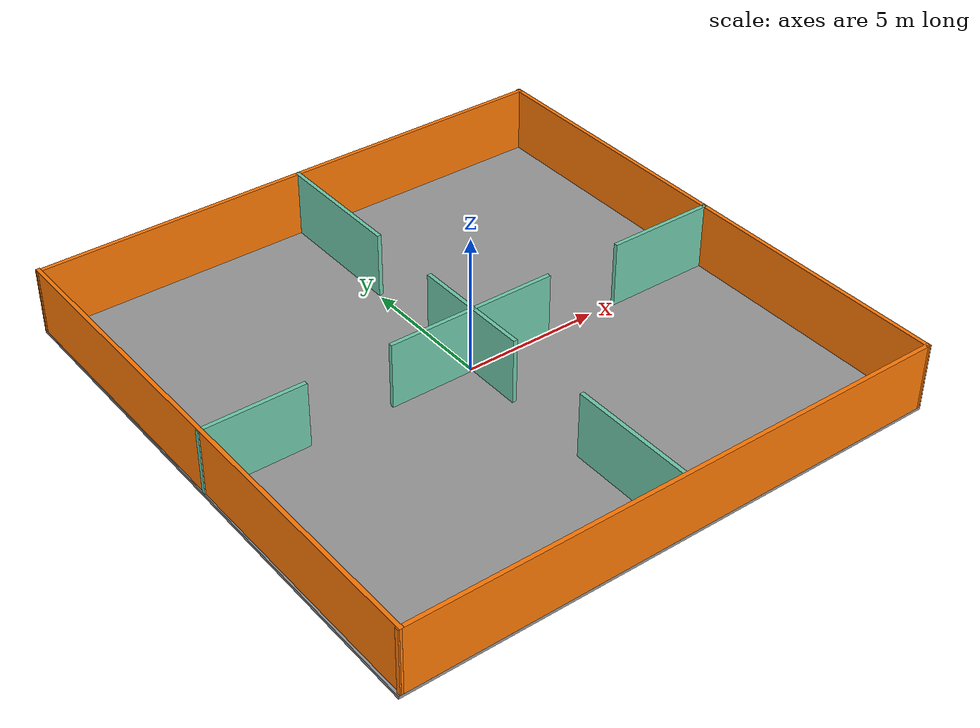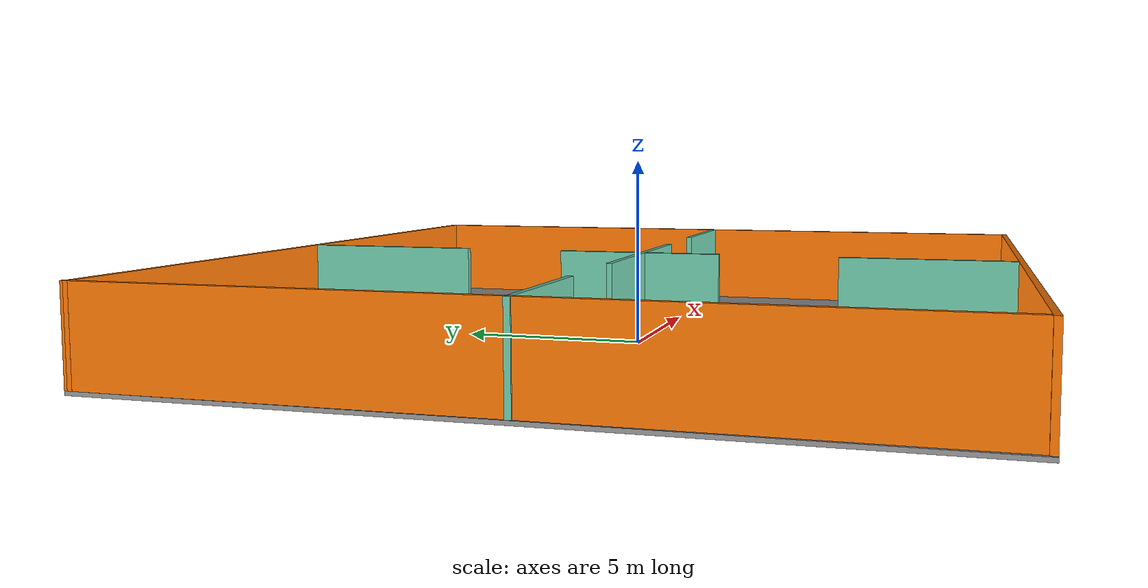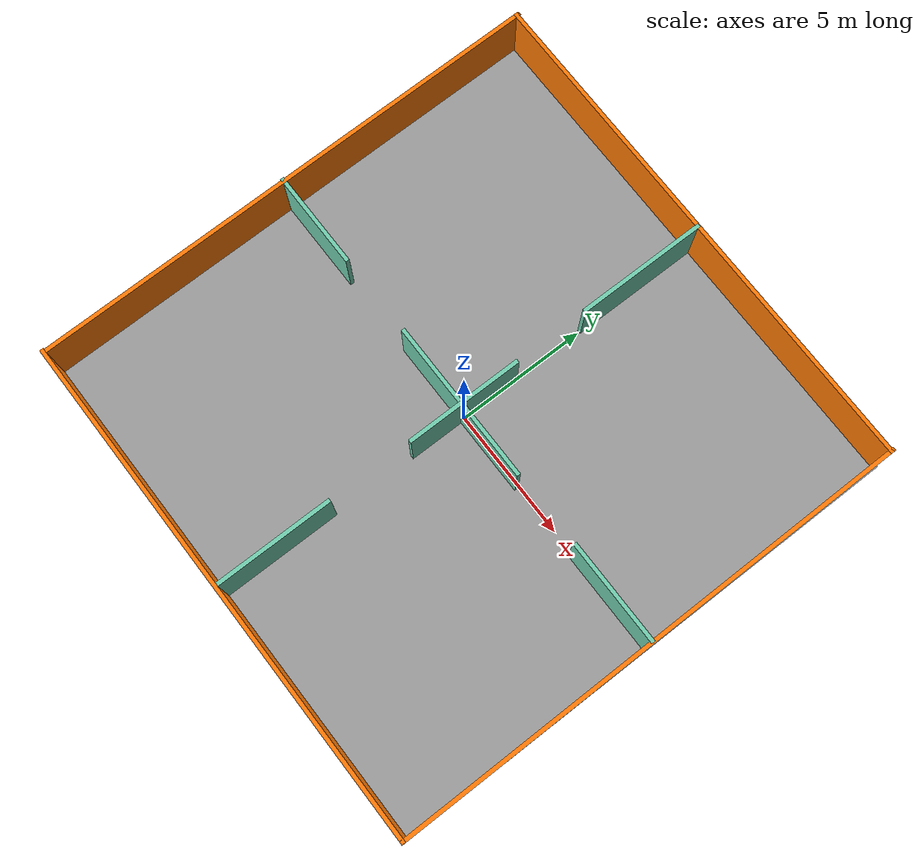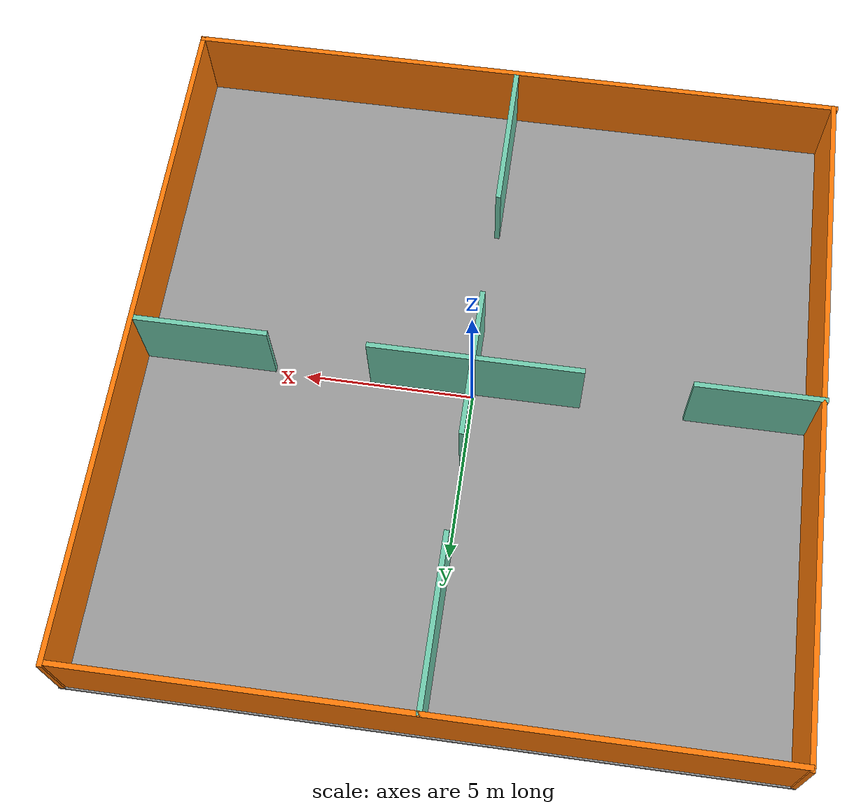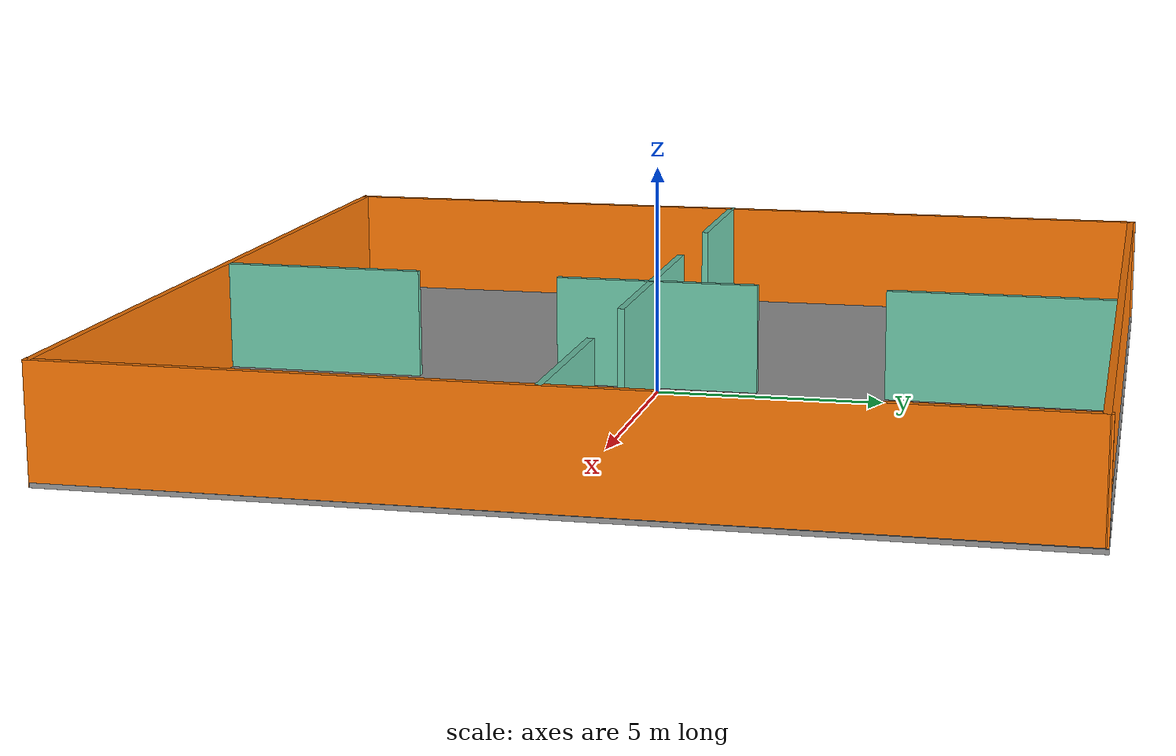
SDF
<?xml version='1.0'?>
<sdf version='1.7'>
  <model name='four_rooms'>
    <link name='Floor_0'>
      <pose>0 0 0 0 -0 0</pose>
      <self_collide>0</self_collide>
      <enable_wind>0</enable_wind>
      <kinematic>0</kinematic>
      <visual name='Floor_0_Visual'>
        <pose>0 0 0.05 0 -0 0</pose>
        <geometry>
          <box>
            <size>19.9831 20.2277 0.1</size>
          </box>
        </geometry>
        <material>
          <script>
            <uri>file://media/materials/scripts/gazebo.material</uri>
            <name>Gazebo/Grey</name>
          </script>
          <ambient>1 1 1 1</ambient>
          <shader type='pixel'/>
        </material>
        <meta>
          <layer>0</layer>
        </meta>
        <transparency>0</transparency>
        <cast_shadows>1</cast_shadows>
      </visual>
      <collision name='Floor_0_Collision'>
        <laser_retro>0</laser_retro>
        <max_contacts>10</max_contacts>
        <pose>0 0 0.05 0 -0 0</pose>
        <geometry>
          <box>
            <size>19.9831 20.2277 0.1</size>
          </box>
        </geometry>
        <surface>
          <friction>
            <ode>
              <mu>1</mu>
              <mu2>1</mu2>
              <fdir1>0 0 0</fdir1>
              <slip1>0</slip1>
              <slip2>0</slip2>
            </ode>
            <torsional>
              <coefficient>1</coefficient>
              <patch_radius>0</patch_radius>
              <surface_radius>0</surface_radius>
              <use_patch_radius>1</use_patch_radius>
              <ode>
                <slip>0</slip>
              </ode>
            </torsional>
          </friction>
          <bounce>
            <restitution_coefficient>0</restitution_coefficient>
            <threshold>1e+06</threshold>
          </bounce>
          <contact>
            <collide_without_contact>0</collide_without_contact>
            <collide_without_contact_bitmask>1</collide_without_contact_bitmask>
            <collide_bitmask>1</collide_bitmask>
            <ode>
              <soft_cfm>0</soft_cfm>
              <soft_erp>0.2</soft_erp>
              <kp>1e+13</kp>
              <kd>1</kd>
              <max_vel>0.01</max_vel>
              <min_depth>0</min_depth>
            </ode>
            <bullet>
              <split_impulse>1</split_impulse>
              <split_impulse_penetration_threshold>-0.01</split_impulse_penetration_threshold>
              <soft_cfm>0</soft_cfm>
              <soft_erp>0.2</soft_erp>
              <kp>1e+13</kp>
              <kd>1</kd>
            </bullet>
          </contact>
        </surface>
      </collision>
    </link>
    <link name='Wall_13'>
      <pose>0.014659 -10.0385 0 0 -0 3.14159</pose>
      <self_collide>0</self_collide>
      <enable_wind>0</enable_wind>
      <kinematic>0</kinematic>
      <visual name='Wall_13_Visual'>
        <pose>0 0 1.25 0 -0 0</pose>
        <geometry>
          <box>
            <size>19.9187 0.15 2.5</size>
          </box>
        </geometry>
        <material>
          <script>
            <uri>file://media/materials/scripts/gazebo.material</uri>
            <name>Gazebo/Grey</name>
          </script>
          <ambient>0.996078 0.47451 0.0196078 1</ambient>
          <shader type='pixel'/>
        </material>
        <meta>
          <layer>0</layer>
        </meta>
        <transparency>0</transparency>
        <cast_shadows>1</cast_shadows>
      </visual>
      <collision name='Wall_13_Collision'>
        <laser_retro>0</laser_retro>
        <max_contacts>10</max_contacts>
        <pose>0 0 1.25 0 -0 0</pose>
        <geometry>
          <box>
            <size>19.9187 0.15 2.5</size>
          </box>
        </geometry>
        <surface>
          <friction>
            <ode>
              <mu>1</mu>
              <mu2>1</mu2>
              <fdir1>0 0 0</fdir1>
              <slip1>0</slip1>
              <slip2>0</slip2>
            </ode>
            <torsional>
              <coefficient>1</coefficient>
              <patch_radius>0</patch_radius>
              <surface_radius>0</surface_radius>
              <use_patch_radius>1</use_patch_radius>
              <ode>
                <slip>0</slip>
              </ode>
            </torsional>
          </friction>
          <bounce>
            <restitution_coefficient>0</restitution_coefficient>
            <threshold>1e+06</threshold>
          </bounce>
          <contact>
            <collide_without_contact>0</collide_without_contact>
            <collide_without_contact_bitmask>1</collide_without_contact_bitmask>
            <collide_bitmask>1</collide_bitmask>
            <ode>
              <soft_cfm>0</soft_cfm>
              <soft_erp>0.2</soft_erp>
              <kp>1e+13</kp>
              <kd>1</kd>
              <max_vel>0.01</max_vel>
              <min_depth>0</min_depth>
            </ode>
            <bullet>
              <split_impulse>1</split_impulse>
              <split_impulse_penetration_threshold>-0.01</split_impulse_penetration_threshold>
              <soft_cfm>0</soft_cfm>
              <soft_erp>0.2</soft_erp>
              <kp>1e+13</kp>
              <kd>1</kd>
            </bullet>
          </contact>
        </surface>
      </collision>
    </link>
    <link name='Wall_14'>
      <pose>-9.8697 0 0 0 -0 1.57543</pose>
      <self_collide>0</self_collide>
      <enable_wind>0</enable_wind>
      <kinematic>0</kinematic>
      <visual name='Wall_14_Visual'>
        <pose>0 0 1.25 0 -0 0</pose>
        <geometry>
          <box>
            <size>20.2272 0.15 2.5</size>
          </box>
        </geometry>
        <material>
          <script>
            <uri>file://media/materials/scripts/gazebo.material</uri>
            <name>Gazebo/Grey</name>
          </script>
          <ambient>0.996078 0.47451 0.0196078 1</ambient>
          <shader type='pixel'/>
        </material>
        <meta>
          <layer>0</layer>
        </meta>
        <transparency>0</transparency>
        <cast_shadows>1</cast_shadows>
      </visual>
      <collision name='Wall_14_Collision'>
        <laser_retro>0</laser_retro>
        <max_contacts>10</max_contacts>
        <pose>0 0 1.25 0 -0 0</pose>
        <geometry>
          <box>
            <size>20.2272 0.15 2.5</size>
          </box>
        </geometry>
        <surface>
          <friction>
            <ode>
              <mu>1</mu>
              <mu2>1</mu2>
              <fdir1>0 0 0</fdir1>
              <slip1>0</slip1>
              <slip2>0</slip2>
            </ode>
            <torsional>
              <coefficient>1</coefficient>
              <patch_radius>0</patch_radius>
              <surface_radius>0</surface_radius>
              <use_patch_radius>1</use_patch_radius>
              <ode>
                <slip>0</slip>
              </ode>
            </torsional>
          </friction>
          <bounce>
            <restitution_coefficient>0</restitution_coefficient>
            <threshold>1e+06</threshold>
          </bounce>
          <contact>
            <collide_without_contact>0</collide_without_contact>
            <collide_without_contact_bitmask>1</collide_without_contact_bitmask>
            <collide_bitmask>1</collide_bitmask>
            <ode>
              <soft_cfm>0</soft_cfm>
              <soft_erp>0.2</soft_erp>
              <kp>1e+13</kp>
              <kd>1</kd>
              <max_vel>0.01</max_vel>
              <min_depth>0</min_depth>
            </ode>
            <bullet>
              <split_impulse>1</split_impulse>
              <split_impulse_penetration_threshold>-0.01</split_impulse_penetration_threshold>
              <soft_cfm>0</soft_cfm>
              <soft_erp>0.2</soft_erp>
              <kp>1e+13</kp>
              <kd>1</kd>
            </bullet>
          </contact>
        </surface>
      </collision>
    </link>
    <link name='Wall_15'>
      <pose>-0.023175 9.99198 0 0 -0 0</pose>
      <self_collide>0</self_collide>
      <enable_wind>0</enable_wind>
      <kinematic>0</kinematic>
      <visual name='Wall_15_Visual'>
        <pose>0 0 1.25 0 -0 0</pose>
        <geometry>
          <box>
            <size>19.9361 0.15 2.5</size>
          </box>
        </geometry>
        <material>
          <script>
            <uri>file://media/materials/scripts/gazebo.material</uri>
            <name>Gazebo/Grey</name>
          </script>
          <ambient>0.996078 0.47451 0.0196078 1</ambient>
          <shader type='pixel'/>
        </material>
        <meta>
          <layer>0</layer>
        </meta>
        <transparency>0</transparency>
        <cast_shadows>1</cast_shadows>
      </visual>
      <collision name='Wall_15_Collision'>
        <laser_retro>0</laser_retro>
        <max_contacts>10</max_contacts>
        <pose>0 0 1.25 0 -0 0</pose>
        <geometry>
          <box>
            <size>19.9361 0.15 2.5</size>
          </box>
        </geometry>
        <surface>
          <friction>
            <ode>
              <mu>1</mu>
              <mu2>1</mu2>
              <fdir1>0 0 0</fdir1>
              <slip1>0</slip1>
              <slip2>0</slip2>
            </ode>
            <torsional>
              <coefficient>1</coefficient>
              <patch_radius>0</patch_radius>
              <surface_radius>0</surface_radius>
              <use_patch_radius>1</use_patch_radius>
              <ode>
                <slip>0</slip>
              </ode>
            </torsional>
          </friction>
          <bounce>
            <restitution_coefficient>0</restitution_coefficient>
            <threshold>1e+06</threshold>
          </bounce>
          <contact>
            <collide_without_contact>0</collide_without_contact>
            <collide_without_contact_bitmask>1</collide_without_contact_bitmask>
            <collide_bitmask>1</collide_bitmask>
            <ode>
              <soft_cfm>0</soft_cfm>
              <soft_erp>0.2</soft_erp>
              <kp>1e+13</kp>
              <kd>1</kd>
              <max_vel>0.01</max_vel>
              <min_depth>0</min_depth>
            </ode>
            <bullet>
              <split_impulse>1</split_impulse>
              <split_impulse_penetration_threshold>-0.01</split_impulse_penetration_threshold>
              <soft_cfm>0</soft_cfm>
              <soft_erp>0.2</soft_erp>
              <kp>1e+13</kp>
              <kd>1</kd>
            </bullet>
          </contact>
        </surface>
      </collision>
    </link>
    <link name='Wall_16'>
      <pose>9.89314 0 0 0 0 -1.56848</pose>
      <self_collide>0</self_collide>
      <enable_wind>0</enable_wind>
      <kinematic>0</kinematic>
      <visual name='Wall_16_Visual'>
        <pose>0 0 1.25 0 -0 0</pose>
        <geometry>
          <box>
            <size>20.2271 0.15 2.5</size>
          </box>
        </geometry>
        <material>
          <script>
            <uri>file://media/materials/scripts/gazebo.material</uri>
            <name>Gazebo/Grey</name>
          </script>
          <ambient>0.996078 0.47451 0.0196078 1</ambient>
          <shader type='pixel'/>
        </material>
        <meta>
          <layer>0</layer>
        </meta>
        <transparency>0</transparency>
        <cast_shadows>1</cast_shadows>
      </visual>
      <collision name='Wall_16_Collision'>
        <laser_retro>0</laser_retro>
        <max_contacts>10</max_contacts>
        <pose>0 0 1.25 0 -0 0</pose>
        <geometry>
          <box>
            <size>20.2271 0.15 2.5</size>
          </box>
        </geometry>
        <surface>
          <friction>
            <ode>
              <mu>1</mu>
              <mu2>1</mu2>
              <fdir1>0 0 0</fdir1>
              <slip1>0</slip1>
              <slip2>0</slip2>
            </ode>
            <torsional>
              <coefficient>1</coefficient>
              <patch_radius>0</patch_radius>
              <surface_radius>0</surface_radius>
              <use_patch_radius>1</use_patch_radius>
              <ode>
                <slip>0</slip>
              </ode>
            </torsional>
          </friction>
          <bounce>
            <restitution_coefficient>0</restitution_coefficient>
            <threshold>1e+06</threshold>
          </bounce>
          <contact>
            <collide_without_contact>0</collide_without_contact>
            <collide_without_contact_bitmask>1</collide_without_contact_bitmask>
            <collide_bitmask>1</collide_bitmask>
            <ode>
              <soft_cfm>0</soft_cfm>
              <soft_erp>0.2</soft_erp>
              <kp>1e+13</kp>
              <kd>1</kd>
              <max_vel>0.01</max_vel>
              <min_depth>0</min_depth>
            </ode>
            <bullet>
              <split_impulse>1</split_impulse>
              <split_impulse_penetration_threshold>-0.01</split_impulse_penetration_threshold>
              <soft_cfm>0</soft_cfm>
              <soft_erp>0.2</soft_erp>
              <kp>1e+13</kp>
              <kd>1</kd>
            </bullet>
          </contact>
        </surface>
      </collision>
    </link>
    <link name='Wall_17'>
      <pose>-0.020792 -7.72221 0 0 -0 1.5708</pose>
      <self_collide>0</self_collide>
      <enable_wind>0</enable_wind>
      <kinematic>0</kinematic>
      <visual name='Wall_17_Visual'>
        <pose>0 0 1.25 0 -0 0</pose>
        <geometry>
          <box>
            <size>4.5 0.15 2.5</size>
          </box>
        </geometry>
        <material>
          <script>
            <uri>file://media/materials/scripts/gazebo.material</uri>
            <name>Gazebo/Grey</name>
          </script>
          <ambient>0.435294 0.796078 0.67451 1</ambient>
          <shader type='pixel'/>
        </material>
        <meta>
          <layer>0</layer>
        </meta>
        <transparency>0</transparency>
        <cast_shadows>1</cast_shadows>
      </visual>
      <collision name='Wall_17_Collision'>
        <laser_retro>0</laser_retro>
        <max_contacts>10</max_contacts>
        <pose>0 0 1.25 0 -0 0</pose>
        <geometry>
          <box>
            <size>4.5 0.15 2.5</size>
          </box>
        </geometry>
        <surface>
          <friction>
            <ode>
              <mu>1</mu>
              <mu2>1</mu2>
              <fdir1>0 0 0</fdir1>
              <slip1>0</slip1>
              <slip2>0</slip2>
            </ode>
            <torsional>
              <coefficient>1</coefficient>
              <patch_radius>0</patch_radius>
              <surface_radius>0</surface_radius>
              <use_patch_radius>1</use_patch_radius>
              <ode>
                <slip>0</slip>
              </ode>
            </torsional>
          </friction>
          <bounce>
            <restitution_coefficient>0</restitution_coefficient>
            <threshold>1e+06</threshold>
          </bounce>
          <contact>
            <collide_without_contact>0</collide_without_contact>
            <collide_without_contact_bitmask>1</collide_without_contact_bitmask>
            <collide_bitmask>1</collide_bitmask>
            <ode>
              <soft_cfm>0</soft_cfm>
              <soft_erp>0.2</soft_erp>
              <kp>1e+13</kp>
              <kd>1</kd>
              <max_vel>0.01</max_vel>
              <min_depth>0</min_depth>
            </ode>
            <bullet>
              <split_impulse>1</split_impulse>
              <split_impulse_penetration_threshold>-0.01</split_impulse_penetration_threshold>
              <soft_cfm>0</soft_cfm>
              <soft_erp>0.2</soft_erp>
              <kp>1e+13</kp>
              <kd>1</kd>
            </bullet>
          </contact>
        </surface>
      </collision>
    </link>
    <link name='Wall_42'>
      <pose>0.014279 -0.015042 0 0 -0 1.5708</pose>
      <self_collide>0</self_collide>
      <enable_wind>0</enable_wind>
      <kinematic>0</kinematic>
      <visual name='Wall_42_Visual'>
        <pose>0 0 1.25 0 -0 0</pose>
        <geometry>
          <box>
            <size>4.5 0.15 2.5</size>
          </box>
        </geometry>
        <material>
          <script>
            <uri>file://media/materials/scripts/gazebo.material</uri>
            <name>Gazebo/Grey</name>
          </script>
          <ambient>0.435294 0.796078 0.67451 1</ambient>
          <shader type='pixel'/>
        </material>
        <meta>
          <layer>0</layer>
        </meta>
        <transparency>0</transparency>
        <cast_shadows>1</cast_shadows>
      </visual>
      <collision name='Wall_42_Collision'>
        <laser_retro>0</laser_retro>
        <max_contacts>10</max_contacts>
        <pose>0 0 1.25 0 -0 0</pose>
        <geometry>
          <box>
            <size>4.5 0.15 2.5</size>
          </box>
        </geometry>
        <surface>
          <friction>
            <ode>
              <mu>1</mu>
              <mu2>1</mu2>
              <fdir1>0 0 0</fdir1>
              <slip1>0</slip1>
              <slip2>0</slip2>
            </ode>
            <torsional>
              <coefficient>1</coefficient>
              <patch_radius>0</patch_radius>
              <surface_radius>0</surface_radius>
              <use_patch_radius>1</use_patch_radius>
              <ode>
                <slip>0</slip>
              </ode>
            </torsional>
          </friction>
          <bounce>
            <restitution_coefficient>0</restitution_coefficient>
            <threshold>1e+06</threshold>
          </bounce>
          <contact>
            <collide_without_contact>0</collide_without_contact>
            <collide_without_contact_bitmask>1</collide_without_contact_bitmask>
            <collide_bitmask>1</collide_bitmask>
            <ode>
              <soft_cfm>0</soft_cfm>
              <soft_erp>0.2</soft_erp>
              <kp>1e+13</kp>
              <kd>1</kd>
              <max_vel>0.01</max_vel>
              <min_depth>0</min_depth>
            </ode>
            <bullet>
              <split_impulse>1</split_impulse>
              <split_impulse_penetration_threshold>-0.01</split_impulse_penetration_threshold>
              <soft_cfm>0</soft_cfm>
              <soft_erp>0.2</soft_erp>
              <kp>1e+13</kp>
              <kd>1</kd>
            </bullet>
          </contact>
        </surface>
      </collision>
    </link>
    <link name='Wall_44'>
      <pose>-0.052794 -0.127916 0 0 -0 0</pose>
      <self_collide>0</self_collide>
      <enable_wind>0</enable_wind>
      <kinematic>0</kinematic>
      <visual name='Wall_44_Visual'>
        <pose>0 0 1.25 0 -0 0</pose>
        <geometry>
          <box>
            <size>6.25 0.15 2.5</size>
          </box>
        </geometry>
        <material>
          <script>
            <uri>file://media/materials/scripts/gazebo.material</uri>
            <name>Gazebo/Grey</name>
          </script>
          <ambient>0.435294 0.796078 0.67451 1</ambient>
          <shader type='pixel'/>
        </material>
        <meta>
          <layer>0</layer>
        </meta>
        <transparency>0</transparency>
        <cast_shadows>1</cast_shadows>
      </visual>
      <collision name='Wall_44_Collision'>
        <laser_retro>0</laser_retro>
        <max_contacts>10</max_contacts>
        <pose>0 0 1.25 0 -0 0</pose>
        <geometry>
          <box>
            <size>6.25 0.15 2.5</size>
          </box>
        </geometry>
        <surface>
          <friction>
            <ode>
              <mu>1</mu>
              <mu2>1</mu2>
              <fdir1>0 0 0</fdir1>
              <slip1>0</slip1>
              <slip2>0</slip2>
            </ode>
            <torsional>
              <coefficient>1</coefficient>
              <patch_radius>0</patch_radius>
              <surface_radius>0</surface_radius>
              <use_patch_radius>1</use_patch_radius>
              <ode>
                <slip>0</slip>
              </ode>
            </torsional>
          </friction>
          <bounce>
            <restitution_coefficient>0</restitution_coefficient>
            <threshold>1e+06</threshold>
          </bounce>
          <contact>
            <collide_without_contact>0</collide_without_contact>
            <collide_without_contact_bitmask>1</collide_without_contact_bitmask>
            <collide_bitmask>1</collide_bitmask>
            <ode>
              <soft_cfm>0</soft_cfm>
              <soft_erp>0.2</soft_erp>
              <kp>1e+13</kp>
              <kd>1</kd>
              <max_vel>0.01</max_vel>
              <min_depth>0</min_depth>
            </ode>
            <bullet>
              <split_impulse>1</split_impulse>
              <split_impulse_penetration_threshold>-0.01</split_impulse_penetration_threshold>
              <soft_cfm>0</soft_cfm>
              <soft_erp>0.2</soft_erp>
              <kp>1e+13</kp>
              <kd>1</kd>
            </bullet>
          </contact>
        </surface>
      </collision>
    </link>
    <link name='Wall_46'>
      <pose>0.015303 7.5426 0 0 0 -1.5708</pose>
      <self_collide>0</self_collide>
      <enable_wind>0</enable_wind>
      <kinematic>0</kinematic>
      <visual name='Wall_46_Visual'>
        <pose>0 0 1.25 0 -0 0</pose>
        <geometry>
          <box>
            <size>5 0.15 2.5</size>
          </box>
        </geometry>
        <material>
          <script>
            <uri>file://media/materials/scripts/gazebo.material</uri>
            <name>Gazebo/Grey</name>
          </script>
          <ambient>0.435294 0.796078 0.67451 1</ambient>
          <shader type='pixel'/>
        </material>
        <meta>
          <layer>0</layer>
        </meta>
        <transparency>0</transparency>
        <cast_shadows>1</cast_shadows>
      </visual>
      <collision name='Wall_46_Collision'>
        <laser_retro>0</laser_retro>
        <max_contacts>10</max_contacts>
        <pose>0 0 1.25 0 -0 0</pose>
        <geometry>
          <box>
            <size>5 0.15 2.5</size>
          </box>
        </geometry>
        <surface>
          <friction>
            <ode>
              <mu>1</mu>
              <mu2>1</mu2>
              <fdir1>0 0 0</fdir1>
              <slip1>0</slip1>
              <slip2>0</slip2>
            </ode>
            <torsional>
              <coefficient>1</coefficient>
              <patch_radius>0</patch_radius>
              <surface_radius>0</surface_radius>
              <use_patch_radius>1</use_patch_radius>
              <ode>
                <slip>0</slip>
              </ode>
            </torsional>
          </friction>
          <bounce>
            <restitution_coefficient>0</restitution_coefficient>
            <threshold>1e+06</threshold>
          </bounce>
          <contact>
            <collide_without_contact>0</collide_without_contact>
            <collide_without_contact_bitmask>1</collide_without_contact_bitmask>
            <collide_bitmask>1</collide_bitmask>
            <ode>
              <soft_cfm>0</soft_cfm>
              <soft_erp>0.2</soft_erp>
              <kp>1e+13</kp>
              <kd>1</kd>
              <max_vel>0.01</max_vel>
              <min_depth>0</min_depth>
            </ode>
            <bullet>
              <split_impulse>1</split_impulse>
              <split_impulse_penetration_threshold>-0.01</split_impulse_penetration_threshold>
              <soft_cfm>0</soft_cfm>
              <soft_erp>0.2</soft_erp>
              <kp>1e+13</kp>
              <kd>1</kd>
            </bullet>
          </contact>
        </surface>
      </collision>
    </link>
    <link name='Wall_48'>
      <pose>-8.10837 -0.144009 0 0 -0 0</pose>
      <self_collide>0</self_collide>
      <enable_wind>0</enable_wind>
      <kinematic>0</kinematic>
      <visual name='Wall_48_Visual'>
        <pose>0 0 1.25 0 -0 0</pose>
        <geometry>
          <box>
            <size>3.75 0.15 2.5</size>
          </box>
        </geometry>
        <material>
          <script>
            <uri>file://media/materials/scripts/gazebo.material</uri>
            <name>Gazebo/Grey</name>
          </script>
          <ambient>0.435294 0.796078 0.67451 1</ambient>
          <shader type='pixel'/>
        </material>
        <meta>
          <layer>0</layer>
        </meta>
        <transparency>0</transparency>
        <cast_shadows>1</cast_shadows>
      </visual>
      <collision name='Wall_48_Collision'>
        <laser_retro>0</laser_retro>
        <max_contacts>10</max_contacts>
        <pose>0 0 1.25 0 -0 0</pose>
        <geometry>
          <box>
            <size>3.75 0.15 2.5</size>
          </box>
        </geometry>
        <surface>
          <friction>
            <ode>
              <mu>1</mu>
              <mu2>1</mu2>
              <fdir1>0 0 0</fdir1>
              <slip1>0</slip1>
              <slip2>0</slip2>
            </ode>
            <torsional>
              <coefficient>1</coefficient>
              <patch_radius>0</patch_radius>
              <surface_radius>0</surface_radius>
              <use_patch_radius>1</use_patch_radius>
              <ode>
                <slip>0</slip>
              </ode>
            </torsional>
          </friction>
          <bounce>
            <restitution_coefficient>0</restitution_coefficient>
            <threshold>1e+06</threshold>
          </bounce>
          <contact>
            <collide_without_contact>0</collide_without_contact>
            <collide_without_contact_bitmask>1</collide_without_contact_bitmask>
            <collide_bitmask>1</collide_bitmask>
            <ode>
              <soft_cfm>0</soft_cfm>
              <soft_erp>0.2</soft_erp>
              <kp>1e+13</kp>
              <kd>1</kd>
              <max_vel>0.01</max_vel>
              <min_depth>0</min_depth>
            </ode>
            <bullet>
              <split_impulse>1</split_impulse>
              <split_impulse_penetration_threshold>-0.01</split_impulse_penetration_threshold>
              <soft_cfm>0</soft_cfm>
              <soft_erp>0.2</soft_erp>
              <kp>1e+13</kp>
              <kd>1</kd>
            </bullet>
          </contact>
        </surface>
      </collision>
    </link>
    <link name='Wall_50'>
      <pose>7.9212 -0.090941 0 0 -0 0</pose>
      <self_collide>0</self_collide>
      <enable_wind>0</enable_wind>
      <kinematic>0</kinematic>
      <visual name='Wall_50_Visual'>
        <pose>0 0 1.25 0 -0 0</pose>
        <geometry>
          <box>
            <size>4 0.15 2.5</size>
          </box>
        </geometry>
        <material>
          <script>
            <uri>file://media/materials/scripts/gazebo.material</uri>
            <name>Gazebo/Grey</name>
          </script>
          <ambient>0.435294 0.796078 0.67451 1</ambient>
          <shader type='pixel'/>
        </material>
        <meta>
          <layer>0</layer>
        </meta>
        <transparency>0</transparency>
        <cast_shadows>1</cast_shadows>
      </visual>
      <collision name='Wall_50_Collision'>
        <laser_retro>0</laser_retro>
        <max_contacts>10</max_contacts>
        <pose>0 0 1.25 0 -0 0</pose>
        <geometry>
          <box>
            <size>4 0.15 2.5</size>
          </box>
        </geometry>
        <surface>
          <friction>
            <ode>
              <mu>1</mu>
              <mu2>1</mu2>
              <fdir1>0 0 0</fdir1>
              <slip1>0</slip1>
              <slip2>0</slip2>
            </ode>
            <torsional>
              <coefficient>1</coefficient>
              <patch_radius>0</patch_radius>
              <surface_radius>0</surface_radius>
              <use_patch_radius>1</use_patch_radius>
              <ode>
                <slip>0</slip>
              </ode>
            </torsional>
          </friction>
          <bounce>
            <restitution_coefficient>0</restitution_coefficient>
            <threshold>1e+06</threshold>
          </bounce>
          <contact>
            <collide_without_contact>0</collide_without_contact>
            <collide_without_contact_bitmask>1</collide_without_contact_bitmask>
            <collide_bitmask>1</collide_bitmask>
            <ode>
              <soft_cfm>0</soft_cfm>
              <soft_erp>0.2</soft_erp>
              <kp>1e+13</kp>
              <kd>1</kd>
              <max_vel>0.01</max_vel>
              <min_depth>0</min_depth>
            </ode>
            <bullet>
              <split_impulse>1</split_impulse>
              <split_impulse_penetration_threshold>-0.01</split_impulse_penetration_threshold>
              <soft_cfm>0</soft_cfm>
              <soft_erp>0.2</soft_erp>
              <kp>1e+13</kp>
              <kd>1</kd>
            </bullet>
          </contact>
        </surface>
      </collision>
    </link>
    <static>1</static>
    <allow_auto_disable>1</allow_auto_disable>
  </model>
</sdf>
